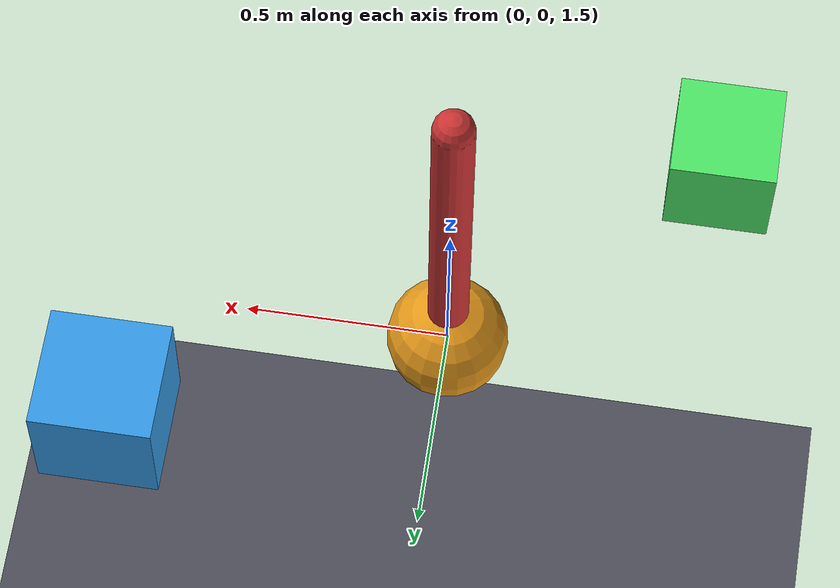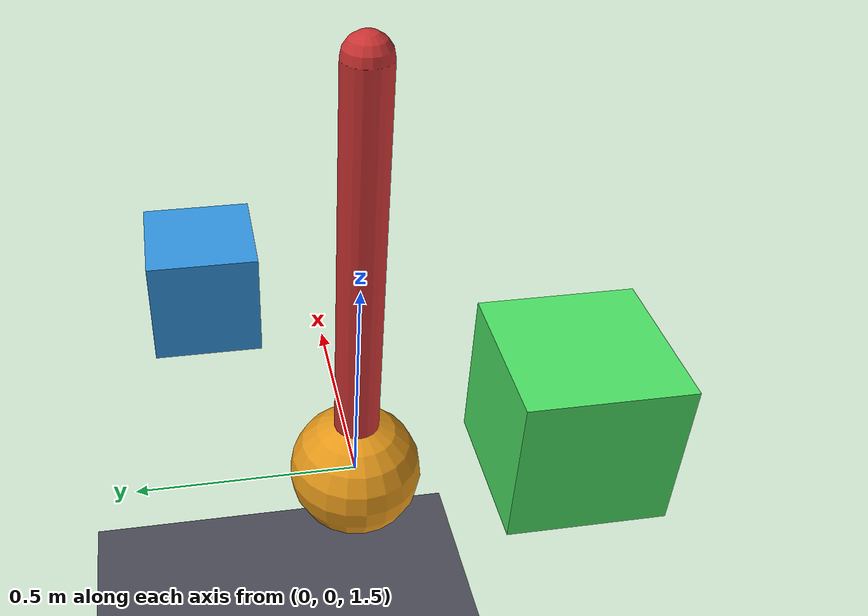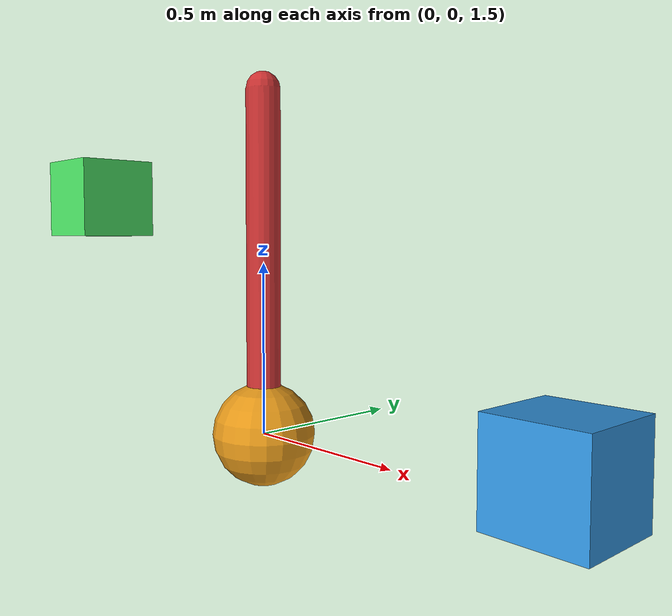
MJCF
<mujoco model="black_splat mujoco actor">
  <option timestep="0.005" gravity="0 0 -9.81"/>
  <worldbody>
    <light diffuse="1 1 1" pos="0 0 5" dir="0 0 -1"/>
    <geom name="floor" type="plane" size="3 3 0.1" rgba="0.3 0.3 0.35 1"/>

    <body name="pendulum_arm" pos="0 0 2">
      <joint name="hinge" type="hinge" axis="0 1 0" pos="0 0 0.5" damping="5.5"/>
      <geom type="capsule" fromto="0 0 0.5 0 0 -0.5" size="0.05" rgba="0.8 0.2 0.2 1"/>
      <body name="bob" pos="0 0 -0.5">
        <geom name="bob" type="sphere" size="0.15" rgba="0.9 0.6 0.1 1"/>
      </body>
    </body>

    <body name="box1" pos="0.8 0.3 1.5">
      <joint type="free"/>
      <geom type="box" size="0.15 0.15 0.15" rgba="0.2 0.6 0.9 1"/>
    </body>

    <body name="box2" pos="-0.6 -0.2 2.2">
      <joint type="free"/>
      <geom type="box" size="0.12 0.12 0.12" rgba="0.3 0.9 0.4 1"/>
    </body>
  </worldbody>
</mujoco>
